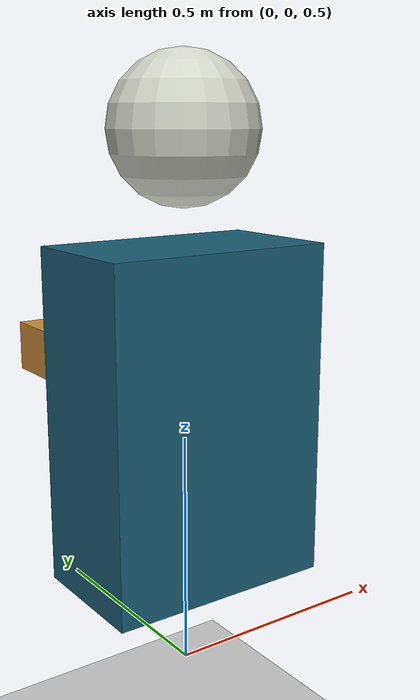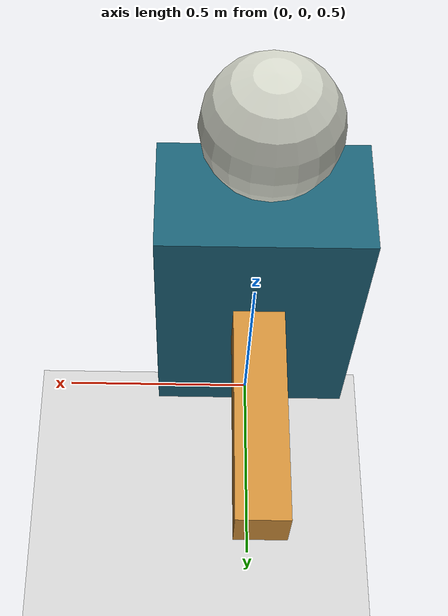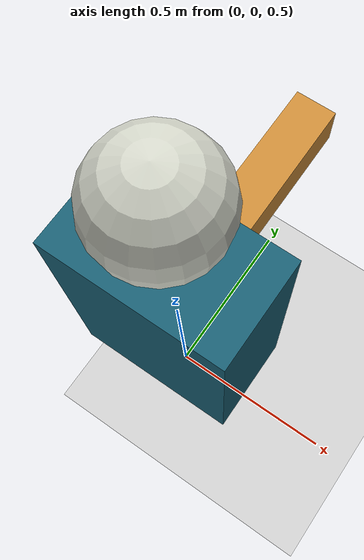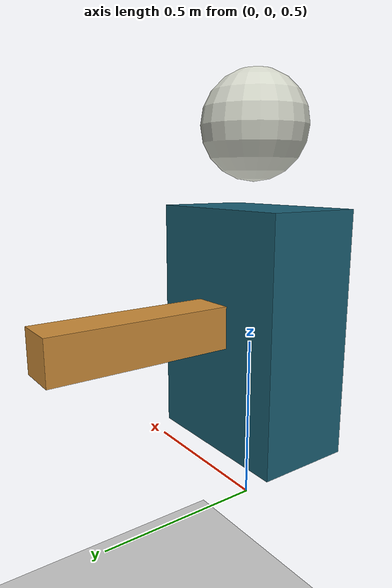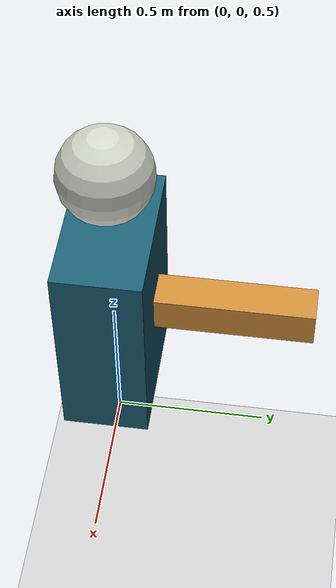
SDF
<?xml version="1.0"?>
<sdf version="1.9">
  <world name="studio">
    <gravity>0 0 -9.81</gravity>
    <physics name="deterministic-step" type="ignored">
      <max_step_size>0.001</max_step_size>
      <real_time_factor>1.0</real_time_factor>
    </physics>
    <plugin filename="gz-sim-physics-system" name="gz::sim::systems::Physics"/>
    <plugin filename="gz-sim-user-commands-system" name="gz::sim::systems::UserCommands"/>
    <plugin filename="gz-sim-scene-broadcaster-system" name="gz::sim::systems::SceneBroadcaster"/>
    <light name="overhead" type="directional">
      <pose>0 0 4 0 0 0</pose><direction>-0.4 -0.2 -1</direction>
      <diffuse>0.9 0.9 0.9 1</diffuse><specular>0.2 0.2 0.2 1</specular>
    </light>
    <model name="floor">
      <static>true</static>
      <link name="ground">
        <collision name="collision"><geometry><plane><normal>0 0 1</normal><size>8 8</size></plane></geometry></collision>
        <visual name="visual"><geometry><plane><normal>0 0 1</normal><size>8 8</size></plane></geometry></visual>
      </link>
    </model>
    <include><uri>model://embodied_demo</uri></include>
  </world>
</sdf>

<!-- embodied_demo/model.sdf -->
<sdf version="1.9">
  <model name="embodied_demo">
    <pose>0 0 0 0 0 0</pose>
    <static>false</static>
    <link name="torso">
      <pose>0 0 1.05 0 0 0</pose>
      <inertial><mass>8</mass><inertia><ixx>0.15</ixx><iyy>0.15</iyy><izz>0.12</izz></inertia></inertial>
      <collision name="body"><geometry><box><size>0.48 0.28 0.7</size></box></geometry></collision>
      <visual name="body"><geometry><box><size>0.48 0.28 0.7</size></box></geometry><material><ambient>0.1 0.37 0.45 1</ambient><diffuse>0.1 0.37 0.45 1</diffuse></material></visual>
    </link>
    <link name="head">
      <pose>0 0 1.62 0 0 0</pose>
      <inertial><mass>1</mass><inertia><ixx>0.01</ixx><iyy>0.01</iyy><izz>0.01</izz></inertia></inertial>
      <collision name="head"><geometry><sphere><radius>0.15</radius></sphere></geometry></collision>
      <visual name="head"><geometry><sphere><radius>0.15</radius></sphere></geometry><material><ambient>0.82 0.83 0.78 1</ambient><diffuse>0.82 0.83 0.78 1</diffuse></material></visual>
    </link>
    <joint name="neck" type="fixed"><parent>torso</parent><child>head</child></joint>
    <link name="left_arm">
      <pose>0 0.39 1.08 0 0 0</pose>
      <inertial><mass>0.2</mass><inertia><ixx>0.004</ixx><iyy>0.004</iyy><izz>0.002</izz></inertia></inertial>
      <collision name="arm"><geometry><box><size>0.12 0.52 0.12</size></box></geometry></collision>
      <visual name="arm"><geometry><box><size>0.12 0.52 0.12</size></box></geometry><material><ambient>0.8 0.55 0.22 1</ambient><diffuse>0.8 0.55 0.22 1</diffuse></material></visual>
    </link>
    <joint name="left_shoulder" type="revolute">
      <parent>torso</parent><child>left_arm</child>
      <pose relative_to="torso">0 0.17 0.05 0 0 0</pose>
      <axis><xyz>1 0 0</xyz><limit><lower>-0.8</lower><upper>0.8</upper><effort>100</effort><velocity>1.0</velocity></limit></axis>
    </joint>
    <joint name="ground_anchor" type="fixed"><parent>world</parent><child>torso</child></joint>
    <plugin filename="gz-sim-pose-publisher-system" name="gz::sim::systems::PosePublisher">
      <publish_link_pose>true</publish_link_pose><publish_model_pose>true</publish_model_pose>
      <use_pose_vector_msg>true</use_pose_vector_msg><update_frequency>20</update_frequency>
      <topic>/model/embodied_demo/pose</topic>
    </plugin>
    <plugin filename="gz-sim-joint-position-controller-system" name="gz::sim::systems::JointPositionController">
      <joint_name>left_shoulder</joint_name><topic>/model/embodied_demo/left_shoulder/cmd_pos</topic>
      <p_gain>100</p_gain><cmd_max>100</cmd_max><cmd_min>-100</cmd_min>
    </plugin>
  </model>
</sdf>
